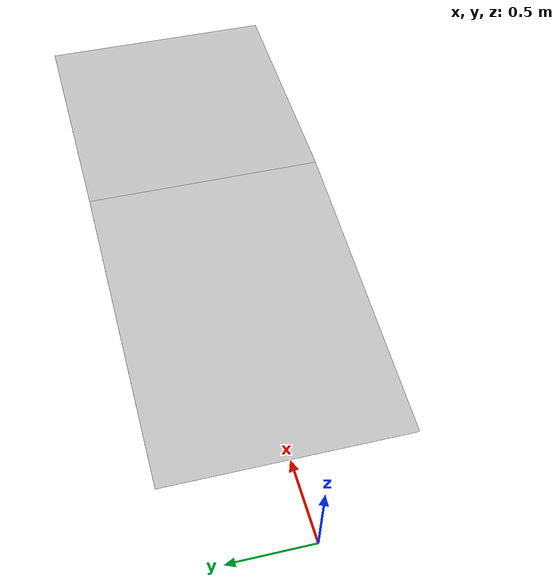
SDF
<?xml version='1.0'?>
<sdf version='1.5'>
<world name="default">
  <model name="box">
      <static>true</static>
      <pose>1.5 0 0.1 0 0.1 3.14</pose>
      <link name="link">
        <collision name="collision">
          <geometry>
            <box>
              <size>2 1.5 .001</size>
            </box>
          </geometry>
        </collision>
        <visual name="visual">
          <geometry>
            <box>
              <size>2 1.5 .001</size>
            </box>
          </geometry>
        </visual>

      </link>
      <link name="link_1">
      <static>true</static>
      <pose>-1.745 0 -0.075 0.0 -0.1 0.0</pose>
        <collision name="collision">
          <geometry>
            <box>
              <size>1.5 1.5 .001</size>
            </box>
          </geometry>
        </collision>
        <visual name="visual">
          <geometry>
            <box>
              <size>1.5 1.5 .001</size>
            </box>
          </geometry>
        </visual>
      </link>
    </model>
  </world>
</sdf>
